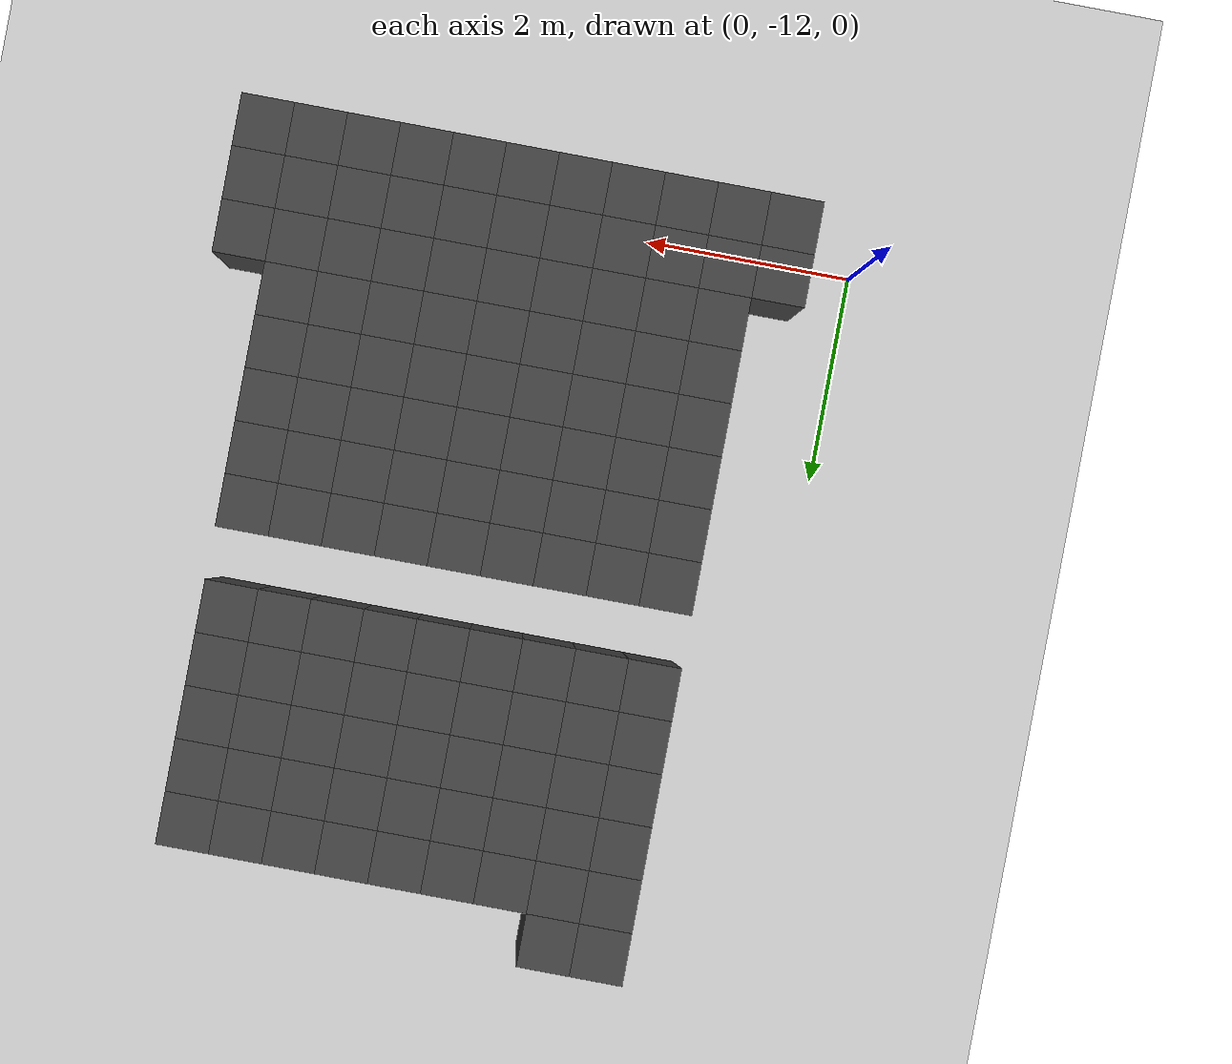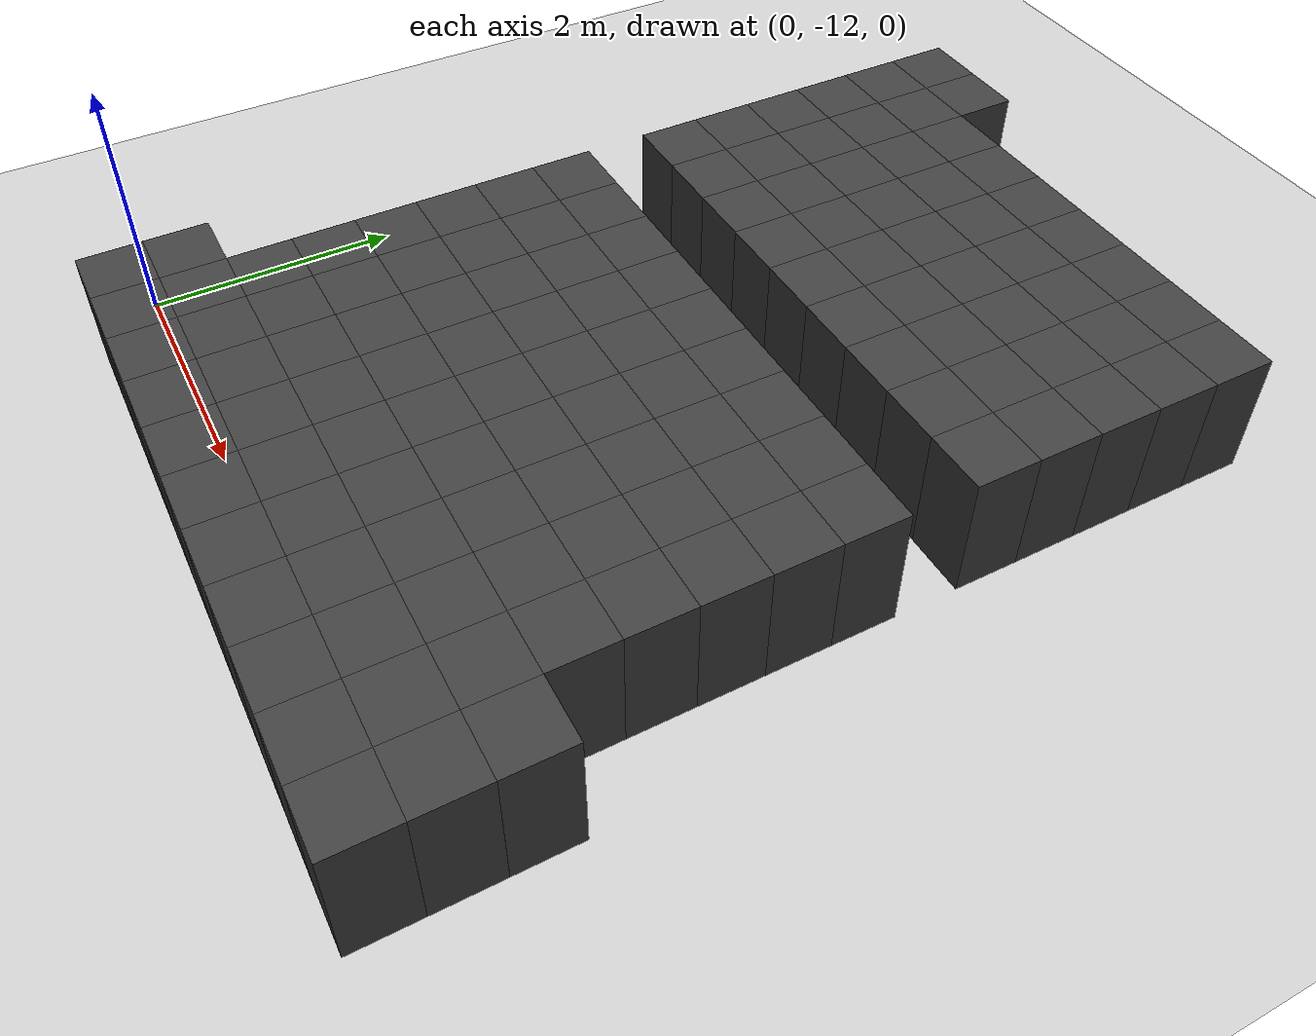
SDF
<sdf version="1.7">
 <world name="map_12818">
  <model name="ground_plane">
   <static>true</static>
   <link name="link">
    <collision name="collision">
     <geometry><plane><normal>0 0 1</normal><size>200 200</size></plane></geometry>
    </collision>
    <visual name="visual">
     <geometry><plane><normal>0 0 1</normal><size>200 200</size></plane></geometry>
     <material><ambient>0.8 0.8 0.8 1</ambient><diffuse>0.8 0.8 0.8 1</diffuse></material>
    </visual>
   </link>
  </model>
  <model name="maze_environment">
   <static>true</static>
   <link name="wall_1480">
    <pose>1.250 -5.250 0.500 0 0 0</pose>
    <collision name="col"><geometry><box><size>0.5 0.5 1.0</size></box></geometry></collision>
    <visual name="vis">
     <geometry><box><size>0.5 0.5 1.0</size></box></geometry>
     <material><ambient>0.15 0.15 0.15 1</ambient><diffuse>0.25 0.25 0.25 1</diffuse></material>
    </visual>
   </link>
   <link name="wall_1481">
    <pose>1.750 -5.250 0.500 0 0 0</pose>
    <collision name="col"><geometry><box><size>0.5 0.5 1.0</size></box></geometry></collision>
    <visual name="vis">
     <geometry><box><size>0.5 0.5 1.0</size></box></geometry>
     <material><ambient>0.15 0.15 0.15 1</ambient><diffuse>0.25 0.25 0.25 1</diffuse></material>
    </visual>
   </link>
   <link name="wall_1513">
    <pose>1.250 -5.750 0.500 0 0 0</pose>
    <collision name="col"><geometry><box><size>0.5 0.5 1.0</size></box></geometry></collision>
    <visual name="vis">
     <geometry><box><size>0.5 0.5 1.0</size></box></geometry>
     <material><ambient>0.15 0.15 0.15 1</ambient><diffuse>0.25 0.25 0.25 1</diffuse></material>
    </visual>
   </link>
   <link name="wall_1514">
    <pose>1.750 -5.750 0.500 0 0 0</pose>
    <collision name="col"><geometry><box><size>0.5 0.5 1.0</size></box></geometry></collision>
    <visual name="vis">
     <geometry><box><size>0.5 0.5 1.0</size></box></geometry>
     <material><ambient>0.15 0.15 0.15 1</ambient><diffuse>0.25 0.25 0.25 1</diffuse></material>
    </visual>
   </link>
   <link name="wall_1515">
    <pose>2.250 -5.750 0.500 0 0 0</pose>
    <collision name="col"><geometry><box><size>0.5 0.5 1.0</size></box></geometry></collision>
    <visual name="vis">
     <geometry><box><size>0.5 0.5 1.0</size></box></geometry>
     <material><ambient>0.15 0.15 0.15 1</ambient><diffuse>0.25 0.25 0.25 1</diffuse></material>
    </visual>
   </link>
   <link name="wall_1516">
    <pose>2.750 -5.750 0.500 0 0 0</pose>
    <collision name="col"><geometry><box><size>0.5 0.5 1.0</size></box></geometry></collision>
    <visual name="vis">
     <geometry><box><size>0.5 0.5 1.0</size></box></geometry>
     <material><ambient>0.15 0.15 0.15 1</ambient><diffuse>0.25 0.25 0.25 1</diffuse></material>
    </visual>
   </link>
   <link name="wall_1517">
    <pose>3.250 -5.750 0.500 0 0 0</pose>
    <collision name="col"><geometry><box><size>0.5 0.5 1.0</size></box></geometry></collision>
    <visual name="vis">
     <geometry><box><size>0.5 0.5 1.0</size></box></geometry>
     <material><ambient>0.15 0.15 0.15 1</ambient><diffuse>0.25 0.25 0.25 1</diffuse></material>
    </visual>
   </link>
   <link name="wall_1518">
    <pose>3.750 -5.750 0.500 0 0 0</pose>
    <collision name="col"><geometry><box><size>0.5 0.5 1.0</size></box></geometry></collision>
    <visual name="vis">
     <geometry><box><size>0.5 0.5 1.0</size></box></geometry>
     <material><ambient>0.15 0.15 0.15 1</ambient><diffuse>0.25 0.25 0.25 1</diffuse></material>
    </visual>
   </link>
   <link name="wall_1519">
    <pose>4.250 -5.750 0.500 0 0 0</pose>
    <collision name="col"><geometry><box><size>0.5 0.5 1.0</size></box></geometry></collision>
    <visual name="vis">
     <geometry><box><size>0.5 0.5 1.0</size></box></geometry>
     <material><ambient>0.15 0.15 0.15 1</ambient><diffuse>0.25 0.25 0.25 1</diffuse></material>
    </visual>
   </link>
   <link name="wall_1520">
    <pose>4.750 -5.750 0.500 0 0 0</pose>
    <collision name="col"><geometry><box><size>0.5 0.5 1.0</size></box></geometry></collision>
    <visual name="vis">
     <geometry><box><size>0.5 0.5 1.0</size></box></geometry>
     <material><ambient>0.15 0.15 0.15 1</ambient><diffuse>0.25 0.25 0.25 1</diffuse></material>
    </visual>
   </link>
   <link name="wall_1521">
    <pose>5.250 -5.750 0.500 0 0 0</pose>
    <collision name="col"><geometry><box><size>0.5 0.5 1.0</size></box></geometry></collision>
    <visual name="vis">
     <geometry><box><size>0.5 0.5 1.0</size></box></geometry>
     <material><ambient>0.15 0.15 0.15 1</ambient><diffuse>0.25 0.25 0.25 1</diffuse></material>
    </visual>
   </link>
   <link name="wall_1546">
    <pose>1.250 -6.250 0.500 0 0 0</pose>
    <collision name="col"><geometry><box><size>0.5 0.5 1.0</size></box></geometry></collision>
    <visual name="vis">
     <geometry><box><size>0.5 0.5 1.0</size></box></geometry>
     <material><ambient>0.15 0.15 0.15 1</ambient><diffuse>0.25 0.25 0.25 1</diffuse></material>
    </visual>
   </link>
   <link name="wall_1547">
    <pose>1.750 -6.250 0.500 0 0 0</pose>
    <collision name="col"><geometry><box><size>0.5 0.5 1.0</size></box></geometry></collision>
    <visual name="vis">
     <geometry><box><size>0.5 0.5 1.0</size></box></geometry>
     <material><ambient>0.15 0.15 0.15 1</ambient><diffuse>0.25 0.25 0.25 1</diffuse></material>
    </visual>
   </link>
   <link name="wall_1548">
    <pose>2.250 -6.250 0.500 0 0 0</pose>
    <collision name="col"><geometry><box><size>0.5 0.5 1.0</size></box></geometry></collision>
    <visual name="vis">
     <geometry><box><size>0.5 0.5 1.0</size></box></geometry>
     <material><ambient>0.15 0.15 0.15 1</ambient><diffuse>0.25 0.25 0.25 1</diffuse></material>
    </visual>
   </link>
   <link name="wall_1549">
    <pose>2.750 -6.250 0.500 0 0 0</pose>
    <collision name="col"><geometry><box><size>0.5 0.5 1.0</size></box></geometry></collision>
    <visual name="vis">
     <geometry><box><size>0.5 0.5 1.0</size></box></geometry>
     <material><ambient>0.15 0.15 0.15 1</ambient><diffuse>0.25 0.25 0.25 1</diffuse></material>
    </visual>
   </link>
   <link name="wall_1550">
    <pose>3.250 -6.250 0.500 0 0 0</pose>
    <collision name="col"><geometry><box><size>0.5 0.5 1.0</size></box></geometry></collision>
    <visual name="vis">
     <geometry><box><size>0.5 0.5 1.0</size></box></geometry>
     <material><ambient>0.15 0.15 0.15 1</ambient><diffuse>0.25 0.25 0.25 1</diffuse></material>
    </visual>
   </link>
   <link name="wall_1551">
    <pose>3.750 -6.250 0.500 0 0 0</pose>
    <collision name="col"><geometry><box><size>0.5 0.5 1.0</size></box></geometry></collision>
    <visual name="vis">
     <geometry><box><size>0.5 0.5 1.0</size></box></geometry>
     <material><ambient>0.15 0.15 0.15 1</ambient><diffuse>0.25 0.25 0.25 1</diffuse></material>
    </visual>
   </link>
   <link name="wall_1552">
    <pose>4.250 -6.250 0.500 0 0 0</pose>
    <collision name="col"><geometry><box><size>0.5 0.5 1.0</size></box></geometry></collision>
    <visual name="vis">
     <geometry><box><size>0.5 0.5 1.0</size></box></geometry>
     <material><ambient>0.15 0.15 0.15 1</ambient><diffuse>0.25 0.25 0.25 1</diffuse></material>
    </visual>
   </link>
   <link name="wall_1553">
    <pose>4.750 -6.250 0.500 0 0 0</pose>
    <collision name="col"><geometry><box><size>0.5 0.5 1.0</size></box></geometry></collision>
    <visual name="vis">
     <geometry><box><size>0.5 0.5 1.0</size></box></geometry>
     <material><ambient>0.15 0.15 0.15 1</ambient><diffuse>0.25 0.25 0.25 1</diffuse></material>
    </visual>
   </link>
   <link name="wall_1554">
    <pose>5.250 -6.250 0.500 0 0 0</pose>
    <collision name="col"><geometry><box><size>0.5 0.5 1.0</size></box></geometry></collision>
    <visual name="vis">
     <geometry><box><size>0.5 0.5 1.0</size></box></geometry>
     <material><ambient>0.15 0.15 0.15 1</ambient><diffuse>0.25 0.25 0.25 1</diffuse></material>
    </visual>
   </link>
   <link name="wall_1575">
    <pose>1.250 -6.750 0.500 0 0 0</pose>
    <collision name="col"><geometry><box><size>0.5 0.5 1.0</size></box></geometry></collision>
    <visual name="vis">
     <geometry><box><size>0.5 0.5 1.0</size></box></geometry>
     <material><ambient>0.15 0.15 0.15 1</ambient><diffuse>0.25 0.25 0.25 1</diffuse></material>
    </visual>
   </link>
   <link name="wall_1576">
    <pose>1.750 -6.750 0.500 0 0 0</pose>
    <collision name="col"><geometry><box><size>0.5 0.5 1.0</size></box></geometry></collision>
    <visual name="vis">
     <geometry><box><size>0.5 0.5 1.0</size></box></geometry>
     <material><ambient>0.15 0.15 0.15 1</ambient><diffuse>0.25 0.25 0.25 1</diffuse></material>
    </visual>
   </link>
   <link name="wall_1577">
    <pose>2.250 -6.750 0.500 0 0 0</pose>
    <collision name="col"><geometry><box><size>0.5 0.5 1.0</size></box></geometry></collision>
    <visual name="vis">
     <geometry><box><size>0.5 0.5 1.0</size></box></geometry>
     <material><ambient>0.15 0.15 0.15 1</ambient><diffuse>0.25 0.25 0.25 1</diffuse></material>
    </visual>
   </link>
   <link name="wall_1578">
    <pose>2.750 -6.750 0.500 0 0 0</pose>
    <collision name="col"><geometry><box><size>0.5 0.5 1.0</size></box></geometry></collision>
    <visual name="vis">
     <geometry><box><size>0.5 0.5 1.0</size></box></geometry>
     <material><ambient>0.15 0.15 0.15 1</ambient><diffuse>0.25 0.25 0.25 1</diffuse></material>
    </visual>
   </link>
   <link name="wall_1579">
    <pose>3.250 -6.750 0.500 0 0 0</pose>
    <collision name="col"><geometry><box><size>0.5 0.5 1.0</size></box></geometry></collision>
    <visual name="vis">
     <geometry><box><size>0.5 0.5 1.0</size></box></geometry>
     <material><ambient>0.15 0.15 0.15 1</ambient><diffuse>0.25 0.25 0.25 1</diffuse></material>
    </visual>
   </link>
   <link name="wall_1580">
    <pose>3.750 -6.750 0.500 0 0 0</pose>
    <collision name="col"><geometry><box><size>0.5 0.5 1.0</size></box></geometry></collision>
    <visual name="vis">
     <geometry><box><size>0.5 0.5 1.0</size></box></geometry>
     <material><ambient>0.15 0.15 0.15 1</ambient><diffuse>0.25 0.25 0.25 1</diffuse></material>
    </visual>
   </link>
   <link name="wall_1581">
    <pose>4.250 -6.750 0.500 0 0 0</pose>
    <collision name="col"><geometry><box><size>0.5 0.5 1.0</size></box></geometry></collision>
    <visual name="vis">
     <geometry><box><size>0.5 0.5 1.0</size></box></geometry>
     <material><ambient>0.15 0.15 0.15 1</ambient><diffuse>0.25 0.25 0.25 1</diffuse></material>
    </visual>
   </link>
   <link name="wall_1582">
    <pose>4.750 -6.750 0.500 0 0 0</pose>
    <collision name="col"><geometry><box><size>0.5 0.5 1.0</size></box></geometry></collision>
    <visual name="vis">
     <geometry><box><size>0.5 0.5 1.0</size></box></geometry>
     <material><ambient>0.15 0.15 0.15 1</ambient><diffuse>0.25 0.25 0.25 1</diffuse></material>
    </visual>
   </link>
   <link name="wall_1583">
    <pose>5.250 -6.750 0.500 0 0 0</pose>
    <collision name="col"><geometry><box><size>0.5 0.5 1.0</size></box></geometry></collision>
    <visual name="vis">
     <geometry><box><size>0.5 0.5 1.0</size></box></geometry>
     <material><ambient>0.15 0.15 0.15 1</ambient><diffuse>0.25 0.25 0.25 1</diffuse></material>
    </visual>
   </link>
   <link name="wall_1611">
    <pose>1.250 -7.250 0.500 0 0 0</pose>
    <collision name="col"><geometry><box><size>0.5 0.5 1.0</size></box></geometry></collision>
    <visual name="vis">
     <geometry><box><size>0.5 0.5 1.0</size></box></geometry>
     <material><ambient>0.15 0.15 0.15 1</ambient><diffuse>0.25 0.25 0.25 1</diffuse></material>
    </visual>
   </link>
   <link name="wall_1612">
    <pose>1.750 -7.250 0.500 0 0 0</pose>
    <collision name="col"><geometry><box><size>0.5 0.5 1.0</size></box></geometry></collision>
    <visual name="vis">
     <geometry><box><size>0.5 0.5 1.0</size></box></geometry>
     <material><ambient>0.15 0.15 0.15 1</ambient><diffuse>0.25 0.25 0.25 1</diffuse></material>
    </visual>
   </link>
   <link name="wall_1613">
    <pose>2.250 -7.250 0.500 0 0 0</pose>
    <collision name="col"><geometry><box><size>0.5 0.5 1.0</size></box></geometry></collision>
    <visual name="vis">
     <geometry><box><size>0.5 0.5 1.0</size></box></geometry>
     <material><ambient>0.15 0.15 0.15 1</ambient><diffuse>0.25 0.25 0.25 1</diffuse></material>
    </visual>
   </link>
   <link name="wall_1614">
    <pose>2.750 -7.250 0.500 0 0 0</pose>
    <collision name="col"><geometry><box><size>0.5 0.5 1.0</size></box></geometry></collision>
    <visual name="vis">
     <geometry><box><size>0.5 0.5 1.0</size></box></geometry>
     <material><ambient>0.15 0.15 0.15 1</ambient><diffuse>0.25 0.25 0.25 1</diffuse></material>
    </visual>
   </link>
   <link name="wall_1615">
    <pose>3.250 -7.250 0.500 0 0 0</pose>
    <collision name="col"><geometry><box><size>0.5 0.5 1.0</size></box></geometry></collision>
    <visual name="vis">
     <geometry><box><size>0.5 0.5 1.0</size></box></geometry>
     <material><ambient>0.15 0.15 0.15 1</ambient><diffuse>0.25 0.25 0.25 1</diffuse></material>
    </visual>
   </link>
   <link name="wall_1616">
    <pose>3.750 -7.250 0.500 0 0 0</pose>
    <collision name="col"><geometry><box><size>0.5 0.5 1.0</size></box></geometry></collision>
    <visual name="vis">
     <geometry><box><size>0.5 0.5 1.0</size></box></geometry>
     <material><ambient>0.15 0.15 0.15 1</ambient><diffuse>0.25 0.25 0.25 1</diffuse></material>
    </visual>
   </link>
   <link name="wall_1617">
    <pose>4.250 -7.250 0.500 0 0 0</pose>
    <collision name="col"><geometry><box><size>0.5 0.5 1.0</size></box></geometry></collision>
    <visual name="vis">
     <geometry><box><size>0.5 0.5 1.0</size></box></geometry>
     <material><ambient>0.15 0.15 0.15 1</ambient><diffuse>0.25 0.25 0.25 1</diffuse></material>
    </visual>
   </link>
   <link name="wall_1618">
    <pose>4.750 -7.250 0.500 0 0 0</pose>
    <collision name="col"><geometry><box><size>0.5 0.5 1.0</size></box></geometry></collision>
    <visual name="vis">
     <geometry><box><size>0.5 0.5 1.0</size></box></geometry>
     <material><ambient>0.15 0.15 0.15 1</ambient><diffuse>0.25 0.25 0.25 1</diffuse></material>
    </visual>
   </link>
   <link name="wall_1619">
    <pose>5.250 -7.250 0.500 0 0 0</pose>
    <collision name="col"><geometry><box><size>0.5 0.5 1.0</size></box></geometry></collision>
    <visual name="vis">
     <geometry><box><size>0.5 0.5 1.0</size></box></geometry>
     <material><ambient>0.15 0.15 0.15 1</ambient><diffuse>0.25 0.25 0.25 1</diffuse></material>
    </visual>
   </link>
   <link name="wall_1639">
    <pose>1.250 -7.750 0.500 0 0 0</pose>
    <collision name="col"><geometry><box><size>0.5 0.5 1.0</size></box></geometry></collision>
    <visual name="vis">
     <geometry><box><size>0.5 0.5 1.0</size></box></geometry>
     <material><ambient>0.15 0.15 0.15 1</ambient><diffuse>0.25 0.25 0.25 1</diffuse></material>
    </visual>
   </link>
   <link name="wall_1640">
    <pose>1.750 -7.750 0.500 0 0 0</pose>
    <collision name="col"><geometry><box><size>0.5 0.5 1.0</size></box></geometry></collision>
    <visual name="vis">
     <geometry><box><size>0.5 0.5 1.0</size></box></geometry>
     <material><ambient>0.15 0.15 0.15 1</ambient><diffuse>0.25 0.25 0.25 1</diffuse></material>
    </visual>
   </link>
   <link name="wall_1641">
    <pose>2.250 -7.750 0.500 0 0 0</pose>
    <collision name="col"><geometry><box><size>0.5 0.5 1.0</size></box></geometry></collision>
    <visual name="vis">
     <geometry><box><size>0.5 0.5 1.0</size></box></geometry>
     <material><ambient>0.15 0.15 0.15 1</ambient><diffuse>0.25 0.25 0.25 1</diffuse></material>
    </visual>
   </link>
   <link name="wall_1642">
    <pose>2.750 -7.750 0.500 0 0 0</pose>
    <collision name="col"><geometry><box><size>0.5 0.5 1.0</size></box></geometry></collision>
    <visual name="vis">
     <geometry><box><size>0.5 0.5 1.0</size></box></geometry>
     <material><ambient>0.15 0.15 0.15 1</ambient><diffuse>0.25 0.25 0.25 1</diffuse></material>
    </visual>
   </link>
   <link name="wall_1643">
    <pose>3.250 -7.750 0.500 0 0 0</pose>
    <collision name="col"><geometry><box><size>0.5 0.5 1.0</size></box></geometry></collision>
    <visual name="vis">
     <geometry><box><size>0.5 0.5 1.0</size></box></geometry>
     <material><ambient>0.15 0.15 0.15 1</ambient><diffuse>0.25 0.25 0.25 1</diffuse></material>
    </visual>
   </link>
   <link name="wall_1644">
    <pose>3.750 -7.750 0.500 0 0 0</pose>
    <collision name="col"><geometry><box><size>0.5 0.5 1.0</size></box></geometry></collision>
    <visual name="vis">
     <geometry><box><size>0.5 0.5 1.0</size></box></geometry>
     <material><ambient>0.15 0.15 0.15 1</ambient><diffuse>0.25 0.25 0.25 1</diffuse></material>
    </visual>
   </link>
   <link name="wall_1645">
    <pose>4.250 -7.750 0.500 0 0 0</pose>
    <collision name="col"><geometry><box><size>0.5 0.5 1.0</size></box></geometry></collision>
    <visual name="vis">
     <geometry><box><size>0.5 0.5 1.0</size></box></geometry>
     <material><ambient>0.15 0.15 0.15 1</ambient><diffuse>0.25 0.25 0.25 1</diffuse></material>
    </visual>
   </link>
   <link name="wall_1646">
    <pose>4.750 -7.750 0.500 0 0 0</pose>
    <collision name="col"><geometry><box><size>0.5 0.5 1.0</size></box></geometry></collision>
    <visual name="vis">
     <geometry><box><size>0.5 0.5 1.0</size></box></geometry>
     <material><ambient>0.15 0.15 0.15 1</ambient><diffuse>0.25 0.25 0.25 1</diffuse></material>
    </visual>
   </link>
   <link name="wall_1647">
    <pose>5.250 -7.750 0.500 0 0 0</pose>
    <collision name="col"><geometry><box><size>0.5 0.5 1.0</size></box></geometry></collision>
    <visual name="vis">
     <geometry><box><size>0.5 0.5 1.0</size></box></geometry>
     <material><ambient>0.15 0.15 0.15 1</ambient><diffuse>0.25 0.25 0.25 1</diffuse></material>
    </visual>
   </link>
   <link name="wall_1687">
    <pose>1.250 -8.750 0.500 0 0 0</pose>
    <collision name="col"><geometry><box><size>0.5 0.5 1.0</size></box></geometry></collision>
    <visual name="vis">
     <geometry><box><size>0.5 0.5 1.0</size></box></geometry>
     <material><ambient>0.15 0.15 0.15 1</ambient><diffuse>0.25 0.25 0.25 1</diffuse></material>
    </visual>
   </link>
   <link name="wall_1688">
    <pose>1.750 -8.750 0.500 0 0 0</pose>
    <collision name="col"><geometry><box><size>0.5 0.5 1.0</size></box></geometry></collision>
    <visual name="vis">
     <geometry><box><size>0.5 0.5 1.0</size></box></geometry>
     <material><ambient>0.15 0.15 0.15 1</ambient><diffuse>0.25 0.25 0.25 1</diffuse></material>
    </visual>
   </link>
   <link name="wall_1689">
    <pose>2.250 -8.750 0.500 0 0 0</pose>
    <collision name="col"><geometry><box><size>0.5 0.5 1.0</size></box></geometry></collision>
    <visual name="vis">
     <geometry><box><size>0.5 0.5 1.0</size></box></geometry>
     <material><ambient>0.15 0.15 0.15 1</ambient><diffuse>0.25 0.25 0.25 1</diffuse></material>
    </visual>
   </link>
   <link name="wall_1690">
    <pose>2.750 -8.750 0.500 0 0 0</pose>
    <collision name="col"><geometry><box><size>0.5 0.5 1.0</size></box></geometry></collision>
    <visual name="vis">
     <geometry><box><size>0.5 0.5 1.0</size></box></geometry>
     <material><ambient>0.15 0.15 0.15 1</ambient><diffuse>0.25 0.25 0.25 1</diffuse></material>
    </visual>
   </link>
   <link name="wall_1691">
    <pose>3.250 -8.750 0.500 0 0 0</pose>
    <collision name="col"><geometry><box><size>0.5 0.5 1.0</size></box></geometry></collision>
    <visual name="vis">
     <geometry><box><size>0.5 0.5 1.0</size></box></geometry>
     <material><ambient>0.15 0.15 0.15 1</ambient><diffuse>0.25 0.25 0.25 1</diffuse></material>
    </visual>
   </link>
   <link name="wall_1692">
    <pose>3.750 -8.750 0.500 0 0 0</pose>
    <collision name="col"><geometry><box><size>0.5 0.5 1.0</size></box></geometry></collision>
    <visual name="vis">
     <geometry><box><size>0.5 0.5 1.0</size></box></geometry>
     <material><ambient>0.15 0.15 0.15 1</ambient><diffuse>0.25 0.25 0.25 1</diffuse></material>
    </visual>
   </link>
   <link name="wall_1693">
    <pose>4.250 -8.750 0.500 0 0 0</pose>
    <collision name="col"><geometry><box><size>0.5 0.5 1.0</size></box></geometry></collision>
    <visual name="vis">
     <geometry><box><size>0.5 0.5 1.0</size></box></geometry>
     <material><ambient>0.15 0.15 0.15 1</ambient><diffuse>0.25 0.25 0.25 1</diffuse></material>
    </visual>
   </link>
   <link name="wall_1694">
    <pose>4.750 -8.750 0.500 0 0 0</pose>
    <collision name="col"><geometry><box><size>0.5 0.5 1.0</size></box></geometry></collision>
    <visual name="vis">
     <geometry><box><size>0.5 0.5 1.0</size></box></geometry>
     <material><ambient>0.15 0.15 0.15 1</ambient><diffuse>0.25 0.25 0.25 1</diffuse></material>
    </visual>
   </link>
   <link name="wall_1695">
    <pose>5.250 -8.750 0.500 0 0 0</pose>
    <collision name="col"><geometry><box><size>0.5 0.5 1.0</size></box></geometry></collision>
    <visual name="vis">
     <geometry><box><size>0.5 0.5 1.0</size></box></geometry>
     <material><ambient>0.15 0.15 0.15 1</ambient><diffuse>0.25 0.25 0.25 1</diffuse></material>
    </visual>
   </link>
   <link name="wall_1720">
    <pose>1.250 -9.250 0.500 0 0 0</pose>
    <collision name="col"><geometry><box><size>0.5 0.5 1.0</size></box></geometry></collision>
    <visual name="vis">
     <geometry><box><size>0.5 0.5 1.0</size></box></geometry>
     <material><ambient>0.15 0.15 0.15 1</ambient><diffuse>0.25 0.25 0.25 1</diffuse></material>
    </visual>
   </link>
   <link name="wall_1721">
    <pose>1.750 -9.250 0.500 0 0 0</pose>
    <collision name="col"><geometry><box><size>0.5 0.5 1.0</size></box></geometry></collision>
    <visual name="vis">
     <geometry><box><size>0.5 0.5 1.0</size></box></geometry>
     <material><ambient>0.15 0.15 0.15 1</ambient><diffuse>0.25 0.25 0.25 1</diffuse></material>
    </visual>
   </link>
   <link name="wall_1722">
    <pose>2.250 -9.250 0.500 0 0 0</pose>
    <collision name="col"><geometry><box><size>0.5 0.5 1.0</size></box></geometry></collision>
    <visual name="vis">
     <geometry><box><size>0.5 0.5 1.0</size></box></geometry>
     <material><ambient>0.15 0.15 0.15 1</ambient><diffuse>0.25 0.25 0.25 1</diffuse></material>
    </visual>
   </link>
   <link name="wall_1723">
    <pose>2.750 -9.250 0.500 0 0 0</pose>
    <collision name="col"><geometry><box><size>0.5 0.5 1.0</size></box></geometry></collision>
    <visual name="vis">
     <geometry><box><size>0.5 0.5 1.0</size></box></geometry>
     <material><ambient>0.15 0.15 0.15 1</ambient><diffuse>0.25 0.25 0.25 1</diffuse></material>
    </visual>
   </link>
   <link name="wall_1724">
    <pose>3.250 -9.250 0.500 0 0 0</pose>
    <collision name="col"><geometry><box><size>0.5 0.5 1.0</size></box></geometry></collision>
    <visual name="vis">
     <geometry><box><size>0.5 0.5 1.0</size></box></geometry>
     <material><ambient>0.15 0.15 0.15 1</ambient><diffuse>0.25 0.25 0.25 1</diffuse></material>
    </visual>
   </link>
   <link name="wall_1725">
    <pose>3.750 -9.250 0.500 0 0 0</pose>
    <collision name="col"><geometry><box><size>0.5 0.5 1.0</size></box></geometry></collision>
    <visual name="vis">
     <geometry><box><size>0.5 0.5 1.0</size></box></geometry>
     <material><ambient>0.15 0.15 0.15 1</ambient><diffuse>0.25 0.25 0.25 1</diffuse></material>
    </visual>
   </link>
   <link name="wall_1726">
    <pose>4.250 -9.250 0.500 0 0 0</pose>
    <collision name="col"><geometry><box><size>0.5 0.5 1.0</size></box></geometry></collision>
    <visual name="vis">
     <geometry><box><size>0.5 0.5 1.0</size></box></geometry>
     <material><ambient>0.15 0.15 0.15 1</ambient><diffuse>0.25 0.25 0.25 1</diffuse></material>
    </visual>
   </link>
   <link name="wall_1727">
    <pose>4.750 -9.250 0.500 0 0 0</pose>
    <collision name="col"><geometry><box><size>0.5 0.5 1.0</size></box></geometry></collision>
    <visual name="vis">
     <geometry><box><size>0.5 0.5 1.0</size></box></geometry>
     <material><ambient>0.15 0.15 0.15 1</ambient><diffuse>0.25 0.25 0.25 1</diffuse></material>
    </visual>
   </link>
   <link name="wall_1728">
    <pose>5.250 -9.250 0.500 0 0 0</pose>
    <collision name="col"><geometry><box><size>0.5 0.5 1.0</size></box></geometry></collision>
    <visual name="vis">
     <geometry><box><size>0.5 0.5 1.0</size></box></geometry>
     <material><ambient>0.15 0.15 0.15 1</ambient><diffuse>0.25 0.25 0.25 1</diffuse></material>
    </visual>
   </link>
   <link name="wall_1753">
    <pose>1.250 -9.750 0.500 0 0 0</pose>
    <collision name="col"><geometry><box><size>0.5 0.5 1.0</size></box></geometry></collision>
    <visual name="vis">
     <geometry><box><size>0.5 0.5 1.0</size></box></geometry>
     <material><ambient>0.15 0.15 0.15 1</ambient><diffuse>0.25 0.25 0.25 1</diffuse></material>
    </visual>
   </link>
   <link name="wall_1754">
    <pose>1.750 -9.750 0.500 0 0 0</pose>
    <collision name="col"><geometry><box><size>0.5 0.5 1.0</size></box></geometry></collision>
    <visual name="vis">
     <geometry><box><size>0.5 0.5 1.0</size></box></geometry>
     <material><ambient>0.15 0.15 0.15 1</ambient><diffuse>0.25 0.25 0.25 1</diffuse></material>
    </visual>
   </link>
   <link name="wall_1755">
    <pose>2.250 -9.750 0.500 0 0 0</pose>
    <collision name="col"><geometry><box><size>0.5 0.5 1.0</size></box></geometry></collision>
    <visual name="vis">
     <geometry><box><size>0.5 0.5 1.0</size></box></geometry>
     <material><ambient>0.15 0.15 0.15 1</ambient><diffuse>0.25 0.25 0.25 1</diffuse></material>
    </visual>
   </link>
   <link name="wall_1756">
    <pose>2.750 -9.750 0.500 0 0 0</pose>
    <collision name="col"><geometry><box><size>0.5 0.5 1.0</size></box></geometry></collision>
    <visual name="vis">
     <geometry><box><size>0.5 0.5 1.0</size></box></geometry>
     <material><ambient>0.15 0.15 0.15 1</ambient><diffuse>0.25 0.25 0.25 1</diffuse></material>
    </visual>
   </link>
   <link name="wall_1757">
    <pose>3.250 -9.750 0.500 0 0 0</pose>
    <collision name="col"><geometry><box><size>0.5 0.5 1.0</size></box></geometry></collision>
    <visual name="vis">
     <geometry><box><size>0.5 0.5 1.0</size></box></geometry>
     <material><ambient>0.15 0.15 0.15 1</ambient><diffuse>0.25 0.25 0.25 1</diffuse></material>
    </visual>
   </link>
   <link name="wall_1758">
    <pose>3.750 -9.750 0.500 0 0 0</pose>
    <collision name="col"><geometry><box><size>0.5 0.5 1.0</size></box></geometry></collision>
    <visual name="vis">
     <geometry><box><size>0.5 0.5 1.0</size></box></geometry>
     <material><ambient>0.15 0.15 0.15 1</ambient><diffuse>0.25 0.25 0.25 1</diffuse></material>
    </visual>
   </link>
   <link name="wall_1759">
    <pose>4.250 -9.750 0.500 0 0 0</pose>
    <collision name="col"><geometry><box><size>0.5 0.5 1.0</size></box></geometry></collision>
    <visual name="vis">
     <geometry><box><size>0.5 0.5 1.0</size></box></geometry>
     <material><ambient>0.15 0.15 0.15 1</ambient><diffuse>0.25 0.25 0.25 1</diffuse></material>
    </visual>
   </link>
   <link name="wall_1760">
    <pose>4.750 -9.750 0.500 0 0 0</pose>
    <collision name="col"><geometry><box><size>0.5 0.5 1.0</size></box></geometry></collision>
    <visual name="vis">
     <geometry><box><size>0.5 0.5 1.0</size></box></geometry>
     <material><ambient>0.15 0.15 0.15 1</ambient><diffuse>0.25 0.25 0.25 1</diffuse></material>
    </visual>
   </link>
   <link name="wall_1761">
    <pose>5.250 -9.750 0.500 0 0 0</pose>
    <collision name="col"><geometry><box><size>0.5 0.5 1.0</size></box></geometry></collision>
    <visual name="vis">
     <geometry><box><size>0.5 0.5 1.0</size></box></geometry>
     <material><ambient>0.15 0.15 0.15 1</ambient><diffuse>0.25 0.25 0.25 1</diffuse></material>
    </visual>
   </link>
   <link name="wall_1790">
    <pose>1.250 -10.250 0.500 0 0 0</pose>
    <collision name="col"><geometry><box><size>0.5 0.5 1.0</size></box></geometry></collision>
    <visual name="vis">
     <geometry><box><size>0.5 0.5 1.0</size></box></geometry>
     <material><ambient>0.15 0.15 0.15 1</ambient><diffuse>0.25 0.25 0.25 1</diffuse></material>
    </visual>
   </link>
   <link name="wall_1791">
    <pose>1.750 -10.250 0.500 0 0 0</pose>
    <collision name="col"><geometry><box><size>0.5 0.5 1.0</size></box></geometry></collision>
    <visual name="vis">
     <geometry><box><size>0.5 0.5 1.0</size></box></geometry>
     <material><ambient>0.15 0.15 0.15 1</ambient><diffuse>0.25 0.25 0.25 1</diffuse></material>
    </visual>
   </link>
   <link name="wall_1792">
    <pose>2.250 -10.250 0.500 0 0 0</pose>
    <collision name="col"><geometry><box><size>0.5 0.5 1.0</size></box></geometry></collision>
    <visual name="vis">
     <geometry><box><size>0.5 0.5 1.0</size></box></geometry>
     <material><ambient>0.15 0.15 0.15 1</ambient><diffuse>0.25 0.25 0.25 1</diffuse></material>
    </visual>
   </link>
   <link name="wall_1793">
    <pose>2.750 -10.250 0.500 0 0 0</pose>
    <collision name="col"><geometry><box><size>0.5 0.5 1.0</size></box></geometry></collision>
    <visual name="vis">
     <geometry><box><size>0.5 0.5 1.0</size></box></geometry>
     <material><ambient>0.15 0.15 0.15 1</ambient><diffuse>0.25 0.25 0.25 1</diffuse></material>
    </visual>
   </link>
   <link name="wall_1794">
    <pose>3.250 -10.250 0.500 0 0 0</pose>
    <collision name="col"><geometry><box><size>0.5 0.5 1.0</size></box></geometry></collision>
    <visual name="vis">
     <geometry><box><size>0.5 0.5 1.0</size></box></geometry>
     <material><ambient>0.15 0.15 0.15 1</ambient><diffuse>0.25 0.25 0.25 1</diffuse></material>
    </visual>
   </link>
   <link name="wall_1795">
    <pose>3.750 -10.250 0.500 0 0 0</pose>
    <collision name="col"><geometry><box><size>0.5 0.5 1.0</size></box></geometry></collision>
    <visual name="vis">
     <geometry><box><size>0.5 0.5 1.0</size></box></geometry>
     <material><ambient>0.15 0.15 0.15 1</ambient><diffuse>0.25 0.25 0.25 1</diffuse></material>
    </visual>
   </link>
   <link name="wall_1796">
    <pose>4.250 -10.250 0.500 0 0 0</pose>
    <collision name="col"><geometry><box><size>0.5 0.5 1.0</size></box></geometry></collision>
    <visual name="vis">
     <geometry><box><size>0.5 0.5 1.0</size></box></geometry>
     <material><ambient>0.15 0.15 0.15 1</ambient><diffuse>0.25 0.25 0.25 1</diffuse></material>
    </visual>
   </link>
   <link name="wall_1797">
    <pose>4.750 -10.250 0.500 0 0 0</pose>
    <collision name="col"><geometry><box><size>0.5 0.5 1.0</size></box></geometry></collision>
    <visual name="vis">
     <geometry><box><size>0.5 0.5 1.0</size></box></geometry>
     <material><ambient>0.15 0.15 0.15 1</ambient><diffuse>0.25 0.25 0.25 1</diffuse></material>
    </visual>
   </link>
   <link name="wall_1798">
    <pose>5.250 -10.250 0.500 0 0 0</pose>
    <collision name="col"><geometry><box><size>0.5 0.5 1.0</size></box></geometry></collision>
    <visual name="vis">
     <geometry><box><size>0.5 0.5 1.0</size></box></geometry>
     <material><ambient>0.15 0.15 0.15 1</ambient><diffuse>0.25 0.25 0.25 1</diffuse></material>
    </visual>
   </link>
   <link name="wall_1829">
    <pose>1.250 -10.750 0.500 0 0 0</pose>
    <collision name="col"><geometry><box><size>0.5 0.5 1.0</size></box></geometry></collision>
    <visual name="vis">
     <geometry><box><size>0.5 0.5 1.0</size></box></geometry>
     <material><ambient>0.15 0.15 0.15 1</ambient><diffuse>0.25 0.25 0.25 1</diffuse></material>
    </visual>
   </link>
   <link name="wall_1830">
    <pose>1.750 -10.750 0.500 0 0 0</pose>
    <collision name="col"><geometry><box><size>0.5 0.5 1.0</size></box></geometry></collision>
    <visual name="vis">
     <geometry><box><size>0.5 0.5 1.0</size></box></geometry>
     <material><ambient>0.15 0.15 0.15 1</ambient><diffuse>0.25 0.25 0.25 1</diffuse></material>
    </visual>
   </link>
   <link name="wall_1831">
    <pose>2.250 -10.750 0.500 0 0 0</pose>
    <collision name="col"><geometry><box><size>0.5 0.5 1.0</size></box></geometry></collision>
    <visual name="vis">
     <geometry><box><size>0.5 0.5 1.0</size></box></geometry>
     <material><ambient>0.15 0.15 0.15 1</ambient><diffuse>0.25 0.25 0.25 1</diffuse></material>
    </visual>
   </link>
   <link name="wall_1832">
    <pose>2.750 -10.750 0.500 0 0 0</pose>
    <collision name="col"><geometry><box><size>0.5 0.5 1.0</size></box></geometry></collision>
    <visual name="vis">
     <geometry><box><size>0.5 0.5 1.0</size></box></geometry>
     <material><ambient>0.15 0.15 0.15 1</ambient><diffuse>0.25 0.25 0.25 1</diffuse></material>
    </visual>
   </link>
   <link name="wall_1833">
    <pose>3.250 -10.750 0.500 0 0 0</pose>
    <collision name="col"><geometry><box><size>0.5 0.5 1.0</size></box></geometry></collision>
    <visual name="vis">
     <geometry><box><size>0.5 0.5 1.0</size></box></geometry>
     <material><ambient>0.15 0.15 0.15 1</ambient><diffuse>0.25 0.25 0.25 1</diffuse></material>
    </visual>
   </link>
   <link name="wall_1834">
    <pose>3.750 -10.750 0.500 0 0 0</pose>
    <collision name="col"><geometry><box><size>0.5 0.5 1.0</size></box></geometry></collision>
    <visual name="vis">
     <geometry><box><size>0.5 0.5 1.0</size></box></geometry>
     <material><ambient>0.15 0.15 0.15 1</ambient><diffuse>0.25 0.25 0.25 1</diffuse></material>
    </visual>
   </link>
   <link name="wall_1835">
    <pose>4.250 -10.750 0.500 0 0 0</pose>
    <collision name="col"><geometry><box><size>0.5 0.5 1.0</size></box></geometry></collision>
    <visual name="vis">
     <geometry><box><size>0.5 0.5 1.0</size></box></geometry>
     <material><ambient>0.15 0.15 0.15 1</ambient><diffuse>0.25 0.25 0.25 1</diffuse></material>
    </visual>
   </link>
   <link name="wall_1836">
    <pose>4.750 -10.750 0.500 0 0 0</pose>
    <collision name="col"><geometry><box><size>0.5 0.5 1.0</size></box></geometry></collision>
    <visual name="vis">
     <geometry><box><size>0.5 0.5 1.0</size></box></geometry>
     <material><ambient>0.15 0.15 0.15 1</ambient><diffuse>0.25 0.25 0.25 1</diffuse></material>
    </visual>
   </link>
   <link name="wall_1837">
    <pose>5.250 -10.750 0.500 0 0 0</pose>
    <collision name="col"><geometry><box><size>0.5 0.5 1.0</size></box></geometry></collision>
    <visual name="vis">
     <geometry><box><size>0.5 0.5 1.0</size></box></geometry>
     <material><ambient>0.15 0.15 0.15 1</ambient><diffuse>0.25 0.25 0.25 1</diffuse></material>
    </visual>
   </link>
   <link name="wall_1867">
    <pose>1.250 -11.250 0.500 0 0 0</pose>
    <collision name="col"><geometry><box><size>0.5 0.5 1.0</size></box></geometry></collision>
    <visual name="vis">
     <geometry><box><size>0.5 0.5 1.0</size></box></geometry>
     <material><ambient>0.15 0.15 0.15 1</ambient><diffuse>0.25 0.25 0.25 1</diffuse></material>
    </visual>
   </link>
   <link name="wall_1868">
    <pose>1.750 -11.250 0.500 0 0 0</pose>
    <collision name="col"><geometry><box><size>0.5 0.5 1.0</size></box></geometry></collision>
    <visual name="vis">
     <geometry><box><size>0.5 0.5 1.0</size></box></geometry>
     <material><ambient>0.15 0.15 0.15 1</ambient><diffuse>0.25 0.25 0.25 1</diffuse></material>
    </visual>
   </link>
   <link name="wall_1869">
    <pose>2.250 -11.250 0.500 0 0 0</pose>
    <collision name="col"><geometry><box><size>0.5 0.5 1.0</size></box></geometry></collision>
    <visual name="vis">
     <geometry><box><size>0.5 0.5 1.0</size></box></geometry>
     <material><ambient>0.15 0.15 0.15 1</ambient><diffuse>0.25 0.25 0.25 1</diffuse></material>
    </visual>
   </link>
   <link name="wall_1870">
    <pose>2.750 -11.250 0.500 0 0 0</pose>
    <collision name="col"><geometry><box><size>0.5 0.5 1.0</size></box></geometry></collision>
    <visual name="vis">
     <geometry><box><size>0.5 0.5 1.0</size></box></geometry>
     <material><ambient>0.15 0.15 0.15 1</ambient><diffuse>0.25 0.25 0.25 1</diffuse></material>
    </visual>
   </link>
   <link name="wall_1871">
    <pose>3.250 -11.250 0.500 0 0 0</pose>
    <collision name="col"><geometry><box><size>0.5 0.5 1.0</size></box></geometry></collision>
    <visual name="vis">
     <geometry><box><size>0.5 0.5 1.0</size></box></geometry>
     <material><ambient>0.15 0.15 0.15 1</ambient><diffuse>0.25 0.25 0.25 1</diffuse></material>
    </visual>
   </link>
   <link name="wall_1872">
    <pose>3.750 -11.250 0.500 0 0 0</pose>
    <collision name="col"><geometry><box><size>0.5 0.5 1.0</size></box></geometry></collision>
    <visual name="vis">
     <geometry><box><size>0.5 0.5 1.0</size></box></geometry>
     <material><ambient>0.15 0.15 0.15 1</ambient><diffuse>0.25 0.25 0.25 1</diffuse></material>
    </visual>
   </link>
   <link name="wall_1873">
    <pose>4.250 -11.250 0.500 0 0 0</pose>
    <collision name="col"><geometry><box><size>0.5 0.5 1.0</size></box></geometry></collision>
    <visual name="vis">
     <geometry><box><size>0.5 0.5 1.0</size></box></geometry>
     <material><ambient>0.15 0.15 0.15 1</ambient><diffuse>0.25 0.25 0.25 1</diffuse></material>
    </visual>
   </link>
   <link name="wall_1874">
    <pose>4.750 -11.250 0.500 0 0 0</pose>
    <collision name="col"><geometry><box><size>0.5 0.5 1.0</size></box></geometry></collision>
    <visual name="vis">
     <geometry><box><size>0.5 0.5 1.0</size></box></geometry>
     <material><ambient>0.15 0.15 0.15 1</ambient><diffuse>0.25 0.25 0.25 1</diffuse></material>
    </visual>
   </link>
   <link name="wall_1875">
    <pose>5.250 -11.250 0.500 0 0 0</pose>
    <collision name="col"><geometry><box><size>0.5 0.5 1.0</size></box></geometry></collision>
    <visual name="vis">
     <geometry><box><size>0.5 0.5 1.0</size></box></geometry>
     <material><ambient>0.15 0.15 0.15 1</ambient><diffuse>0.25 0.25 0.25 1</diffuse></material>
    </visual>
   </link>
   <link name="wall_1876">
    <pose>5.750 -11.250 0.500 0 0 0</pose>
    <collision name="col"><geometry><box><size>0.5 0.5 1.0</size></box></geometry></collision>
    <visual name="vis">
     <geometry><box><size>0.5 0.5 1.0</size></box></geometry>
     <material><ambient>0.15 0.15 0.15 1</ambient><diffuse>0.25 0.25 0.25 1</diffuse></material>
    </visual>
   </link>
   <link name="wall_1904">
    <pose>0.750 -11.750 0.500 0 0 0</pose>
    <collision name="col"><geometry><box><size>0.5 0.5 1.0</size></box></geometry></collision>
    <visual name="vis">
     <geometry><box><size>0.5 0.5 1.0</size></box></geometry>
     <material><ambient>0.15 0.15 0.15 1</ambient><diffuse>0.25 0.25 0.25 1</diffuse></material>
    </visual>
   </link>
   <link name="wall_1905">
    <pose>1.250 -11.750 0.500 0 0 0</pose>
    <collision name="col"><geometry><box><size>0.5 0.5 1.0</size></box></geometry></collision>
    <visual name="vis">
     <geometry><box><size>0.5 0.5 1.0</size></box></geometry>
     <material><ambient>0.15 0.15 0.15 1</ambient><diffuse>0.25 0.25 0.25 1</diffuse></material>
    </visual>
   </link>
   <link name="wall_1906">
    <pose>1.750 -11.750 0.500 0 0 0</pose>
    <collision name="col"><geometry><box><size>0.5 0.5 1.0</size></box></geometry></collision>
    <visual name="vis">
     <geometry><box><size>0.5 0.5 1.0</size></box></geometry>
     <material><ambient>0.15 0.15 0.15 1</ambient><diffuse>0.25 0.25 0.25 1</diffuse></material>
    </visual>
   </link>
   <link name="wall_1907">
    <pose>2.250 -11.750 0.500 0 0 0</pose>
    <collision name="col"><geometry><box><size>0.5 0.5 1.0</size></box></geometry></collision>
    <visual name="vis">
     <geometry><box><size>0.5 0.5 1.0</size></box></geometry>
     <material><ambient>0.15 0.15 0.15 1</ambient><diffuse>0.25 0.25 0.25 1</diffuse></material>
    </visual>
   </link>
   <link name="wall_1908">
    <pose>2.750 -11.750 0.500 0 0 0</pose>
    <collision name="col"><geometry><box><size>0.5 0.5 1.0</size></box></geometry></collision>
    <visual name="vis">
     <geometry><box><size>0.5 0.5 1.0</size></box></geometry>
     <material><ambient>0.15 0.15 0.15 1</ambient><diffuse>0.25 0.25 0.25 1</diffuse></material>
    </visual>
   </link>
   <link name="wall_1909">
    <pose>3.250 -11.750 0.500 0 0 0</pose>
    <collision name="col"><geometry><box><size>0.5 0.5 1.0</size></box></geometry></collision>
    <visual name="vis">
     <geometry><box><size>0.5 0.5 1.0</size></box></geometry>
     <material><ambient>0.15 0.15 0.15 1</ambient><diffuse>0.25 0.25 0.25 1</diffuse></material>
    </visual>
   </link>
   <link name="wall_1910">
    <pose>3.750 -11.750 0.500 0 0 0</pose>
    <collision name="col"><geometry><box><size>0.5 0.5 1.0</size></box></geometry></collision>
    <visual name="vis">
     <geometry><box><size>0.5 0.5 1.0</size></box></geometry>
     <material><ambient>0.15 0.15 0.15 1</ambient><diffuse>0.25 0.25 0.25 1</diffuse></material>
    </visual>
   </link>
   <link name="wall_1911">
    <pose>4.250 -11.750 0.500 0 0 0</pose>
    <collision name="col"><geometry><box><size>0.5 0.5 1.0</size></box></geometry></collision>
    <visual name="vis">
     <geometry><box><size>0.5 0.5 1.0</size></box></geometry>
     <material><ambient>0.15 0.15 0.15 1</ambient><diffuse>0.25 0.25 0.25 1</diffuse></material>
    </visual>
   </link>
   <link name="wall_1912">
    <pose>4.750 -11.750 0.500 0 0 0</pose>
    <collision name="col"><geometry><box><size>0.5 0.5 1.0</size></box></geometry></collision>
    <visual name="vis">
     <geometry><box><size>0.5 0.5 1.0</size></box></geometry>
     <material><ambient>0.15 0.15 0.15 1</ambient><diffuse>0.25 0.25 0.25 1</diffuse></material>
    </visual>
   </link>
   <link name="wall_1913">
    <pose>5.250 -11.750 0.500 0 0 0</pose>
    <collision name="col"><geometry><box><size>0.5 0.5 1.0</size></box></geometry></collision>
    <visual name="vis">
     <geometry><box><size>0.5 0.5 1.0</size></box></geometry>
     <material><ambient>0.15 0.15 0.15 1</ambient><diffuse>0.25 0.25 0.25 1</diffuse></material>
    </visual>
   </link>
   <link name="wall_1914">
    <pose>5.750 -11.750 0.500 0 0 0</pose>
    <collision name="col"><geometry><box><size>0.5 0.5 1.0</size></box></geometry></collision>
    <visual name="vis">
     <geometry><box><size>0.5 0.5 1.0</size></box></geometry>
     <material><ambient>0.15 0.15 0.15 1</ambient><diffuse>0.25 0.25 0.25 1</diffuse></material>
    </visual>
   </link>
   <link name="wall_1951">
    <pose>0.750 -12.250 0.500 0 0 0</pose>
    <collision name="col"><geometry><box><size>0.5 0.5 1.0</size></box></geometry></collision>
    <visual name="vis">
     <geometry><box><size>0.5 0.5 1.0</size></box></geometry>
     <material><ambient>0.15 0.15 0.15 1</ambient><diffuse>0.25 0.25 0.25 1</diffuse></material>
    </visual>
   </link>
   <link name="wall_1952">
    <pose>1.250 -12.250 0.500 0 0 0</pose>
    <collision name="col"><geometry><box><size>0.5 0.5 1.0</size></box></geometry></collision>
    <visual name="vis">
     <geometry><box><size>0.5 0.5 1.0</size></box></geometry>
     <material><ambient>0.15 0.15 0.15 1</ambient><diffuse>0.25 0.25 0.25 1</diffuse></material>
    </visual>
   </link>
   <link name="wall_1953">
    <pose>1.750 -12.250 0.500 0 0 0</pose>
    <collision name="col"><geometry><box><size>0.5 0.5 1.0</size></box></geometry></collision>
    <visual name="vis">
     <geometry><box><size>0.5 0.5 1.0</size></box></geometry>
     <material><ambient>0.15 0.15 0.15 1</ambient><diffuse>0.25 0.25 0.25 1</diffuse></material>
    </visual>
   </link>
   <link name="wall_1954">
    <pose>2.250 -12.250 0.500 0 0 0</pose>
    <collision name="col"><geometry><box><size>0.5 0.5 1.0</size></box></geometry></collision>
    <visual name="vis">
     <geometry><box><size>0.5 0.5 1.0</size></box></geometry>
     <material><ambient>0.15 0.15 0.15 1</ambient><diffuse>0.25 0.25 0.25 1</diffuse></material>
    </visual>
   </link>
   <link name="wall_1955">
    <pose>2.750 -12.250 0.500 0 0 0</pose>
    <collision name="col"><geometry><box><size>0.5 0.5 1.0</size></box></geometry></collision>
    <visual name="vis">
     <geometry><box><size>0.5 0.5 1.0</size></box></geometry>
     <material><ambient>0.15 0.15 0.15 1</ambient><diffuse>0.25 0.25 0.25 1</diffuse></material>
    </visual>
   </link>
   <link name="wall_1956">
    <pose>3.250 -12.250 0.500 0 0 0</pose>
    <collision name="col"><geometry><box><size>0.5 0.5 1.0</size></box></geometry></collision>
    <visual name="vis">
     <geometry><box><size>0.5 0.5 1.0</size></box></geometry>
     <material><ambient>0.15 0.15 0.15 1</ambient><diffuse>0.25 0.25 0.25 1</diffuse></material>
    </visual>
   </link>
   <link name="wall_1957">
    <pose>3.750 -12.250 0.500 0 0 0</pose>
    <collision name="col"><geometry><box><size>0.5 0.5 1.0</size></box></geometry></collision>
    <visual name="vis">
     <geometry><box><size>0.5 0.5 1.0</size></box></geometry>
     <material><ambient>0.15 0.15 0.15 1</ambient><diffuse>0.25 0.25 0.25 1</diffuse></material>
    </visual>
   </link>
   <link name="wall_1958">
    <pose>4.250 -12.250 0.500 0 0 0</pose>
    <collision name="col"><geometry><box><size>0.5 0.5 1.0</size></box></geometry></collision>
    <visual name="vis">
     <geometry><box><size>0.5 0.5 1.0</size></box></geometry>
     <material><ambient>0.15 0.15 0.15 1</ambient><diffuse>0.25 0.25 0.25 1</diffuse></material>
    </visual>
   </link>
   <link name="wall_1959">
    <pose>4.750 -12.250 0.500 0 0 0</pose>
    <collision name="col"><geometry><box><size>0.5 0.5 1.0</size></box></geometry></collision>
    <visual name="vis">
     <geometry><box><size>0.5 0.5 1.0</size></box></geometry>
     <material><ambient>0.15 0.15 0.15 1</ambient><diffuse>0.25 0.25 0.25 1</diffuse></material>
    </visual>
   </link>
   <link name="wall_1960">
    <pose>5.250 -12.250 0.500 0 0 0</pose>
    <collision name="col"><geometry><box><size>0.5 0.5 1.0</size></box></geometry></collision>
    <visual name="vis">
     <geometry><box><size>0.5 0.5 1.0</size></box></geometry>
     <material><ambient>0.15 0.15 0.15 1</ambient><diffuse>0.25 0.25 0.25 1</diffuse></material>
    </visual>
   </link>
   <link name="wall_1961">
    <pose>5.750 -12.250 0.500 0 0 0</pose>
    <collision name="col"><geometry><box><size>0.5 0.5 1.0</size></box></geometry></collision>
    <visual name="vis">
     <geometry><box><size>0.5 0.5 1.0</size></box></geometry>
     <material><ambient>0.15 0.15 0.15 1</ambient><diffuse>0.25 0.25 0.25 1</diffuse></material>
    </visual>
   </link>
  </model>
 </world>
</sdf>
